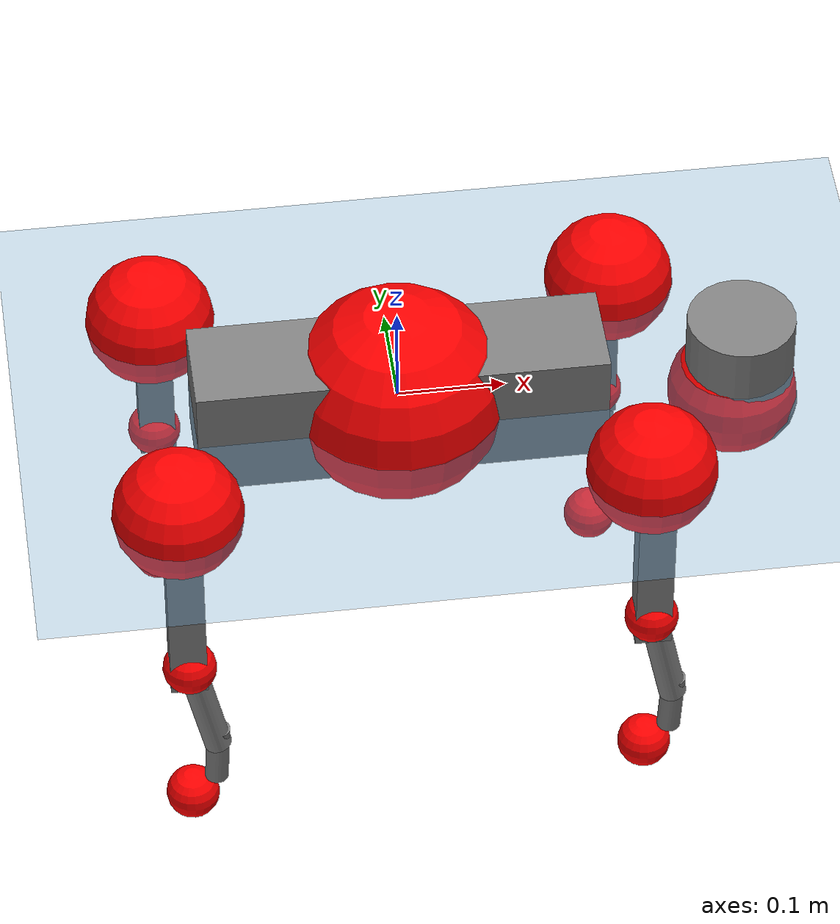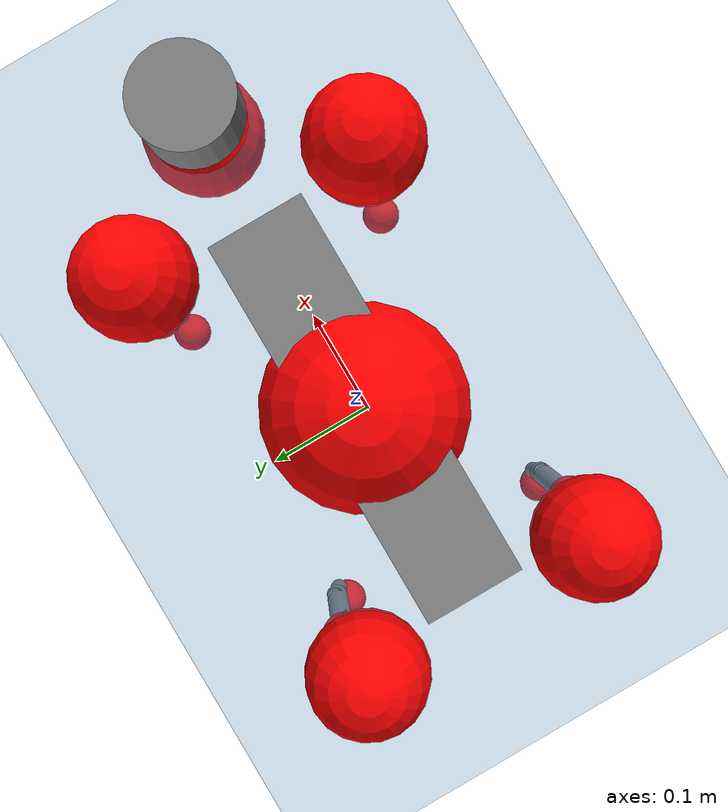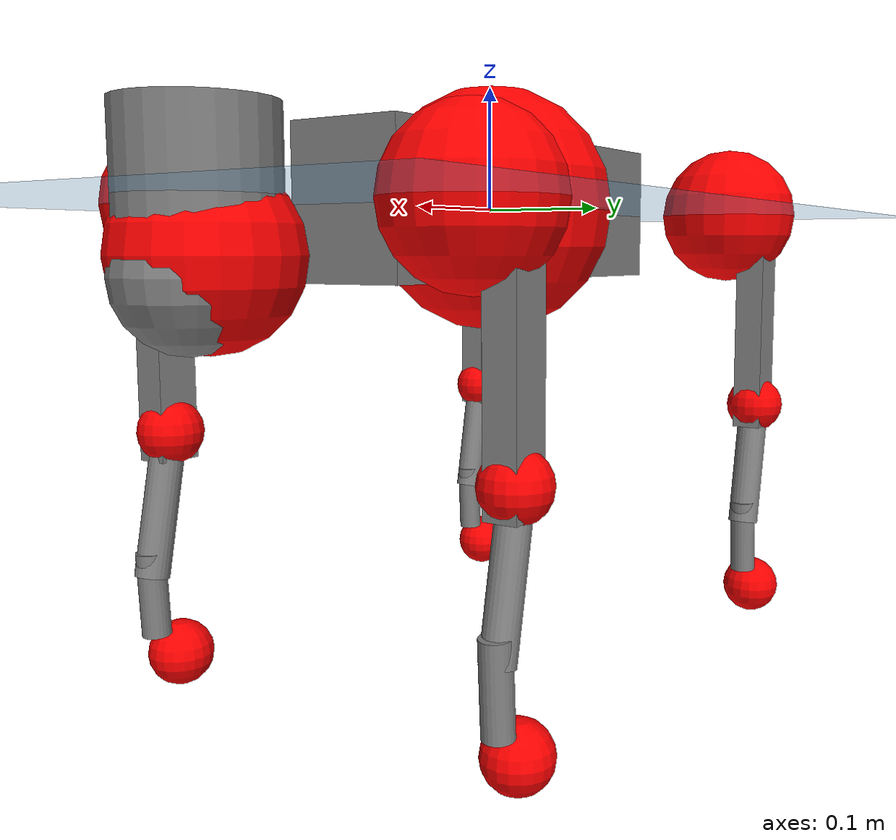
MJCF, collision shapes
<mujoco model="go2">
  <compiler angle="radian" assetdir="assets" balanceinertia="true" inertiafromgeom="false"/>

  <option timestep="0.005" density="1.2" viscosity="2e-05"/>

  <size nkey="1"/>

  <visual>
    <quality shadowsize="8192"/>
    <map shadowclip="0.5"/>
  </visual>

  <default>
    <default class="/">
      <geom contype="0" conaffinity="0" group="1" solref="-1000 -80"/>
      <site size="0.01 0.005 0.005" group="5"/>
      <general forcelimited="true" biastype="affine" gainprm="20" biasprm="0 -20 -0.5"/>
      <default class="go2">
        <joint armature="0.01" damping="0.01" frictionloss="0.2"/>
        <geom condim="1" margin="0.001"/>
        <default class="visual">
          <geom type="mesh" group="2"/>
        </default>
        <default class="collision">
          <geom group="3"/>
          <default class="foot">
            <geom size="0.022 0 0" condim="6" priority="1" friction="0.8 0.02 0.01" solimp="0.015 1 0.022"/>
          </default>
        </default>
        <default class="reward_collision_sphere">
          <geom group="5" rgba="1 0 0 1"/>
        </default>
      </default>
    </default>
  </default>

  <asset>
    <texture type="skybox" colorspace="auto" name="//unnamed_texture_0" builtin="gradient" rgb1="0.95 0.95 0.95" rgb2="0.95 0.95 0.95" width="100" height="600"/>
    <texture type="2d" colorspace="auto" name="texplane" builtin="checker" rgb1="0.345 0.575 0.748" rgb2="0.345 0.575 0.748" markrgb="1 1 1" width="512" height="512"/>
    <material name="MatPlane" class="/" texture="texplane" texuniform="true" texrepeat="2 2" specular="0.9"/>
    <material name="metal" class="/" rgba="0.9 0.95 0.95 1"/>
    <material name="black" class="/" rgba="0 0 0 1"/>
    <material name="white" class="/"/>
    <material name="gray" class="/" rgba="0.671705 0.692426 0.77427 1"/>
    <mesh name="base_0" class="/" file="base_0.obj"/>
    <mesh name="base_1" class="/" file="base_1.obj"/>
    <mesh name="base_2" class="/" file="base_2.obj"/>
    <mesh name="base_3" class="/" file="base_3.obj"/>
    <mesh name="base_4" class="/" file="base_4.obj"/>
    <mesh name="hip_0" class="/" file="hip_0.obj"/>
    <mesh name="hip_1" class="/" file="hip_1.obj"/>
    <mesh name="thigh_0" class="/" file="thigh_0.obj"/>
    <mesh name="thigh_1" class="/" file="thigh_1.obj"/>
    <mesh name="thigh_mirror_0" class="/" file="thigh_mirror_0.obj"/>
    <mesh name="thigh_mirror_1" class="/" file="thigh_mirror_1.obj"/>
    <mesh name="calf_0" class="/" file="calf_0.obj"/>
    <mesh name="calf_1" class="/" file="calf_1.obj"/>
    <mesh name="calf_mirror_0" class="/" file="calf_mirror_0.obj"/>
    <mesh name="calf_mirror_1" class="/" file="calf_mirror_1.obj"/>
    <mesh name="foot" class="/" file="foot.obj"/>
  </asset>

  <worldbody>
    <geom name="floor" class="/" size="100 100 0.125" type="plane" group="0" material="MatPlane"/>
    <light name="toplight_shadow" class="/" pos="0 0 5" dir="0.0990148 0.0990148 -0.990148" type="directional" ambient="0.04 0.04 0.04" diffuse="0.55 0.55 0.55" specular="0.12 0.12 0.12"/>
    <light name="toplight_fill" class="/" pos="0 0 5" dir="0.0990148 0.0990148 -0.990148" type="directional" castshadow="false" ambient="0.04 0.04 0.04" diffuse="0.3 0.3 0.3" specular="0.08 0.08 0.08"/>
    <body name="trunk" childclass="go2" pos="0.00086236 0.00257062 0.000844723" quat="1 0.000453676 0.000560253 7.58869e-05">
      <inertial pos="0.0231717 0.000185674 -0.00450464" quat="0.00472831 0.721623 0.00349369 0.692261" mass="7.25294" diaginertia="0.191681 0.15377 0.00929607"/>
      <joint name="//unnamed_joint_0" type="free" armature="0" damping="0" frictionloss="0"/>
      <geom name="//unnamed_geom_1" class="visual" material="black" mesh="base_0"/>
      <geom name="//unnamed_geom_2" class="visual" material="black" mesh="base_1"/>
      <geom name="//unnamed_geom_3" class="visual" material="black" mesh="base_2"/>
      <geom name="//unnamed_geom_4" class="visual" material="white" mesh="base_3"/>
      <geom name="//unnamed_geom_5" class="visual" material="gray" mesh="base_4"/>
      <geom name="trunk_1" class="collision" size="0.189742 0.0471581 0.0574976" type="box"/>
      <geom name="trunk_2" class="collision" size="0.0504365 0.0453928" pos="0.318367 0 0.00825203" type="cylinder"/>
      <geom name="trunk_3" class="collision" size="0.0474103" pos="0.327304 0 -0.0495122"/>
      <geom name="//unnamed_geom_9" class="reward_collision_sphere" size="0.100873"/>
      <geom name="//unnamed_geom_10" class="reward_collision_sphere" size="0.0605238" pos="0.312782 0 -0.0371341"/>
      <site name="imu" pos="-0.0196482 -0.000171707 0.035686" size="0.0100873"/>
      <camera name="track" pos="0 -2.16782 0" quat="0.707107 0.707107 0 0" mode="trackcom"/>
      <camera name="ego_camera" pos="0.348528 0 0.0371341" quat="-0.5 -0.5 0.5 0.5"/>
      <body name="FL_hip" pos="0.214828 0.0498809 -0.0018133" quat="1 -0.000432595 0.000246654 0.000200519">
        <inertial pos="-0.00640056 -0.000184709 0.000450899" quat="0.497213 0.498898 0.506408 0.497425" mass="0.694244" diaginertia="0.00153616 0.000877458 0.000186332"/>
        <joint name="FL_hip_joint" pos="0 0 0" axis="0.999974 -0.00143819 0.00704757" stiffness="0.00521971" range="-1.03293 1.049" armature="0.010207" damping="0.0137915" frictionloss="0.229969"/>
        <geom name="//unnamed_geom_11" class="visual" material="metal" mesh="hip_0"/>
        <geom name="//unnamed_geom_12" class="visual" material="gray" mesh="hip_1"/>
        <geom name="//unnamed_geom_13" class="collision" size="0.0464016 0.0201746" pos="0 0.0867127 0" quat="0.707107 0.707107 0 0" type="cylinder"/>
        <geom name="//unnamed_geom_14" class="reward_collision_sphere" size="0.0605238" pos="0 0.0758736 0"/>
        <body name="FL_thigh" pos="-0.00289757 0.103282 -0.00167055" quat="0.999999 0.00140779 -0.000361428 -8.79807e-05">
          <inertial pos="-0.00374737 -0.0238533 -0.0264287" quat="0.836535 0.0812213 -0.0249473 0.541285" mass="1.13398" diaginertia="0.00993961 0.00846654 0.000330076"/>
          <joint name="FL_thigh_joint" pos="0 0 0" axis="-0.00133098 0.999871 -0.0159944" range="-1.51684 3.4904" armature="0.0109134" damping="0" frictionloss="0.174249"/>
          <geom name="//unnamed_geom_15" class="visual" material="metal" mesh="thigh_0"/>
          <geom name="//unnamed_geom_16" class="visual" material="gray" mesh="thigh_1"/>
          <geom name="//unnamed_geom_17" class="collision" size="0.10743 0.0123569 0.0171484" pos="0 0 -0.0878841" quat="0.707107 0 0.707107 0" type="box"/>
          <body name="FL_calf" pos="-0.00108986 0.000506793 -0.175102" quat="0.999999 0.000748983 -0.000612254 0.000653462">
            <inertial pos="0.00976373 -0.00161861 -0.114921" quat="0.709907 0.00245968 -0.00459778 0.704276" mass="0.264536" diaginertia="0.00261172 0.00227144 2.0651e-05"/>
            <joint name="FL_calf_joint" pos="0 0 0" axis="-0.00484912 0.999983 0.00308706" stiffness="0.00636416" range="-2.71865 -0.842922" armature="0.0101689" damping="0" frictionloss="0.196159"/>
            <geom name="//unnamed_geom_18" class="visual" material="gray" mesh="calf_0"/>
            <geom name="//unnamed_geom_19" class="visual" material="black" mesh="calf_1"/>
            <geom name="FL_calf0" class="collision" size="0.0121048 0.0605238" pos="0.00893662 0 -0.0495122" quat="0.994493 0 -0.104807 0" type="cylinder"/>
            <geom name="//unnamed_geom_21" class="collision" size="0.011096 0.0327837" pos="0.0223416 0 -0.12213" quat="0.999688 0 0.0249974 0" type="cylinder"/>
            <geom name="//unnamed_geom_22" class="visual" pos="0 0 -0.175768" quat="1 0 0 0" material="black" mesh="foot"/>
            <geom name="FL_foot" class="foot" size="0.0224434" pos="-0.00223416 0 -0.175768"/>
            <geom name="//unnamed_geom_24" class="reward_collision_sphere" size="0.0252182"/>
            <geom name="//unnamed_geom_25" class="reward_collision_sphere" size="0.0252182" pos="-0.00223416 0 -0.175768"/>
            <site name="FL_foot" class="foot" pos="-0.00223416 0 -0.175768" size="0.0100873"/>
          </body>
        </body>
      </body>
      <body name="FR_hip" pos="0.216669 -0.0510068 -0.000395932" quat="1 -0.000121822 0.000101225 -8.63449e-05">
        <inertial pos="-0.00643096 -8.92767e-05 0.000337817" quat="0.495641 0.500664 0.495213 0.508369" mass="0.69747" diaginertia="0.00155679 0.000864296 0.000184345"/>
        <joint name="FR_hip_joint" pos="0 0 0" axis="0.999989 -0.00280491 0.00373165" range="-1.05588 1.0404" armature="0.0101655" damping="0.0109577" frictionloss="0.187314"/>
        <geom name="//unnamed_geom_26" class="visual" pos="0 2.25374e-09 9.66676e-08" quat="4.63268e-05 1 0 0" material="metal" mesh="hip_0"/>
        <geom name="//unnamed_geom_27" class="visual" pos="0 3.65358e-09 -2.39096e-07" quat="4.63268e-05 1 0 0" material="gray" mesh="hip_1"/>
        <geom name="//unnamed_geom_28" class="collision" size="0.0464016 0.0201746" pos="0 -0.0867127 0" quat="0.707107 0.707107 0 0" type="cylinder"/>
        <geom name="//unnamed_geom_29" class="reward_collision_sphere" size="0.0605238" pos="0 -0.0758736 0"/>
        <body name="FR_thigh" pos="0.000359527 -0.103742 0.0032673" quat="1 6.89075e-05 -7.68559e-05 9.73056e-06">
          <inertial pos="-0.00685728 0.0230279 -0.0250476" quat="0.551766 -0.0201312 0.0832841 0.829586" mass="1.21711" diaginertia="0.0104496 0.0090291 0.000346006"/>
          <joint name="FR_thigh_joint" pos="0 0 0" axis="-0.0111359 -0.999936 -0.0021906" stiffness="0.0107651" range="-3.48988 1.62674" armature="0.00907372" damping="0.00789701" frictionloss="0.210591"/>
          <geom name="//unnamed_geom_30" class="visual" material="metal" mesh="thigh_mirror_0"/>
          <geom name="//unnamed_geom_31" class="visual" material="gray" mesh="thigh_mirror_1"/>
          <geom name="//unnamed_geom_32" class="collision" size="0.10743 0.0123569 0.0171484" pos="0 0 -0.0878841" quat="0.707107 0 0.707107 0" type="box"/>
          <body name="FR_calf" pos="1.62932e-05 0.00227754 -0.173904" quat="1 -0.000228708 2.27435e-05 4.96633e-05">
            <inertial pos="0.00567364 -0.00181129 -0.115305" quat="0.704385 -0.00169612 0.00272182 0.709811" mass="0.242599" diaginertia="0.00267382 0.00221572 2.01587e-05"/>
            <joint name="FR_calf_joint" pos="0 0 0" axis="-0.0108158 -0.999905 -0.00850391" stiffness="0.000280257" range="0.835738 2.73682" armature="0.010106" damping="0.0105537" frictionloss="0.212116"/>
            <geom name="//unnamed_geom_33" class="visual" material="gray" mesh="calf_mirror_0"/>
            <geom name="//unnamed_geom_34" class="visual" material="black" mesh="calf_mirror_1"/>
            <geom name="FR_calf0" class="collision" size="0.0131135 0.0605238" pos="0.0111708 0 -0.0495122" quat="0.995004 0 -0.0998334 0" type="cylinder"/>
            <geom name="//unnamed_geom_36" class="collision" size="0.011096 0.0327837" pos="0.0223416 0 -0.12213" quat="0.999688 0 0.0249974 0" type="cylinder"/>
            <geom name="//unnamed_geom_37" class="visual" pos="0 0 -0.175768" quat="1 0 0 0" material="black" mesh="foot"/>
            <geom name="FR_foot" class="foot" size="0.019608" pos="-0.00223416 0 -0.175768"/>
            <geom name="//unnamed_geom_39" class="reward_collision_sphere" size="0.0252182"/>
            <geom name="//unnamed_geom_40" class="reward_collision_sphere" size="0.0252182" pos="-0.00223416 0 -0.175768"/>
            <site name="FR_foot" class="foot" pos="-0.00223416 0 -0.175768" size="0.0100873"/>
          </body>
        </body>
      </body>
      <body name="RL_hip" pos="-0.217779 0.0486473 -0.00215214" quat="1 -5.14899e-05 5.25341e-05 -2.25863e-05">
        <inertial pos="0.00618163 0.00308814 0.0001289" quat="0.501922 0.502286 0.49568 0.500084" mass="0.669279" diaginertia="0.00149949 0.000891975 0.000180143"/>
        <joint name="RL_hip_joint" pos="0 0 0" axis="-0.999906 -0.011827 -0.00699652" range="-1.0004 1.09589" armature="0.0100646" damping="0.0140718" frictionloss="0.178121"/>
        <geom name="//unnamed_geom_41" class="visual" pos="-2.54269e-09 0 -4.98427e-07" quat="4.63268e-05 0 1 0" material="metal" mesh="hip_0"/>
        <geom name="//unnamed_geom_42" class="visual" pos="-4.12201e-09 0 -4.42033e-07" quat="4.63268e-05 0 1 0" material="gray" mesh="hip_1"/>
        <geom name="//unnamed_geom_43" class="collision" size="0.0464016 0.0201746" pos="0 0.0867127 0" quat="0.707107 0.707107 0 0" type="cylinder"/>
        <geom name="//unnamed_geom_44" class="reward_collision_sphere" size="0.0605238" pos="0 0.0758736 0"/>
        <body name="RL_thigh" pos="0.00270126 0.105613 -0.000975698" quat="0.999999 0.00120728 -0.000452929 -5.37412e-05">
          <inertial pos="-0.00303589 -0.0243087 -0.0280126" quat="0.829868 0.0933015 -0.0162266 0.549864" mass="1.23173" diaginertia="0.0103127 0.00887556 0.000348975"/>
          <joint name="RL_thigh_joint" pos="0 0 0" axis="0.000874067 0.999995 -0.00298785" range="-0.475686 4.59398" armature="0.0102052" damping="0.0105067" frictionloss="0.215579"/>
          <geom name="//unnamed_geom_45" class="visual" material="metal" mesh="thigh_0"/>
          <geom name="//unnamed_geom_46" class="visual" material="gray" mesh="thigh_1"/>
          <geom name="//unnamed_geom_47" class="collision" size="0.10743 0.0123569 0.0171484" pos="0 0 -0.0878841" quat="0.707107 0 0.707107 0" type="box"/>
          <body name="RL_calf" pos="-0.00232503 0.00104846 -0.175617" quat="1 -0.000384161 0.000119532 0.000176402">
            <inertial pos="0.0063545 -0.000904875 -0.118096" quat="0.704365 0.00139134 -0.0152204 0.709673" mass="0.24616" diaginertia="0.00262231 0.00211674 2.01386e-05"/>
            <joint name="RL_calf_joint" pos="0 0 0" axis="0.0137782 0.999736 0.0183647" range="-2.69763 -0.885255" armature="0.0108018" damping="0" frictionloss="0.183228"/>
            <geom name="//unnamed_geom_48" class="visual" material="gray" mesh="calf_0"/>
            <geom name="//unnamed_geom_49" class="visual" material="black" mesh="calf_1"/>
            <geom name="RL_calf0" class="collision" size="0.0131135 0.0605238" pos="0.0111708 0 -0.0495122" quat="0.995004 0 -0.0998334 0" type="cylinder"/>
            <geom name="//unnamed_geom_51" class="collision" size="0.011096 0.0327837" pos="0.0223416 0 -0.12213" quat="0.999688 0 0.0249974 0" type="cylinder"/>
            <geom name="//unnamed_geom_52" class="visual" pos="0 0 -0.175768" quat="1 0 0 0" material="black" mesh="foot"/>
            <geom name="RL_foot" class="foot" size="0.0200751" pos="-0.00223416 0 -0.175768"/>
            <geom name="//unnamed_geom_54" class="reward_collision_sphere" size="0.0252182"/>
            <geom name="//unnamed_geom_55" class="reward_collision_sphere" size="0.0252182" pos="-0.00223416 0 -0.175768"/>
            <site name="RL_foot" class="foot" pos="-0.00223416 0 -0.175768" size="0.0100873"/>
          </body>
        </body>
      </body>
      <body name="RR_hip" pos="-0.21543 -0.0488726 -0.00287239" quat="0.999999 -0.000937801 -1.22038e-05 0.000720318">
        <inertial pos="0.00829776 0.000721344 -0.000203825" quat="0.499139 0.497089 0.498229 0.5055" mass="0.687454" diaginertia="0.00157672 0.000911865 0.000188047"/>
        <joint name="RR_hip_joint" pos="0 0 0" axis="-0.999998 0.000474098 0.00187137" range="-1.04627 1.09171" armature="0.00890784" damping="0.0197214" frictionloss="0.195372"/>
        <geom name="//unnamed_geom_56" class="visual" pos="2.54155e-09 2.25374e-09 -5.95094e-07" quat="2.14617e-09 4.63268e-05 4.63268e-05 -1" material="metal" mesh="hip_0"/>
        <geom name="//unnamed_geom_57" class="visual" pos="4.12485e-09 3.65358e-09 -2.02937e-07" quat="2.14617e-09 4.63268e-05 4.63268e-05 -1" material="gray" mesh="hip_1"/>
        <geom name="//unnamed_geom_58" class="collision" size="0.0464016 0.0201746" pos="0 -0.0867127 0" quat="0.707107 0.707107 0 0" type="cylinder"/>
        <geom name="//unnamed_geom_59" class="reward_collision_sphere" size="0.0605238" pos="0 -0.0758736 0"/>
        <body name="RR_thigh" pos="0.000123491 -0.105883 -0.000182081" quat="0.999999 0.00121345 0.00045673 -0.000511841">
          <inertial pos="-0.00262794 0.0251373 -0.0250402" quat="0.552425 -0.0242071 0.0835844 0.829008" mass="1.15544" diaginertia="0.0104309 0.00886243 0.000330643"/>
          <joint name="RR_thigh_joint" pos="0 0 0" axis="-0.00819197 -0.999809 -0.0177564" range="-4.53494 0.572137" armature="0.0107222" damping="0.00635542" frictionloss="0.173564"/>
          <geom name="//unnamed_geom_60" class="visual" material="metal" mesh="thigh_mirror_0"/>
          <geom name="//unnamed_geom_61" class="visual" material="gray" mesh="thigh_mirror_1"/>
          <geom name="//unnamed_geom_62" class="collision" size="0.10743 0.0123569 0.0171484" pos="0 0 -0.0878841" quat="0.707107 0 0.707107 0" type="box"/>
          <body name="RR_calf" pos="0.00179552 0.000975978 -0.176808" quat="1 -7.61481e-05 0.000517079 0.000150601">
            <inertial pos="0.00601603 0.00114918 -0.116693" quat="0.703506 -0.00426706 0.00623075 0.710649" mass="0.253677" diaginertia="0.00252965 0.00223724 2.05946e-05"/>
            <joint name="RR_calf_joint" pos="0 0 0" axis="-0.00169442 -0.999988 0.00457799" range="0.788271 2.7263" armature="0.0100925" damping="0.0203414" frictionloss="0.201559"/>
            <geom name="//unnamed_geom_63" class="visual" material="gray" mesh="calf_mirror_0"/>
            <geom name="//unnamed_geom_64" class="visual" material="black" mesh="calf_mirror_1"/>
            <geom name="RR_calf0" class="collision" size="0.0131135 0.0605238" pos="0.0111708 0 -0.0495122" quat="0.995004 0 -0.0998334 0" type="cylinder"/>
            <geom name="//unnamed_geom_66" class="collision" size="0.011096 0.0327837" pos="0.0223416 0 -0.12213" quat="0.999688 0 0.0249974 0" type="cylinder"/>
            <geom name="//unnamed_geom_67" class="visual" pos="0 0 -0.175768" quat="1 0 0 0" material="black" mesh="foot"/>
            <geom name="RR_foot" class="foot" size="0.0215422" pos="-0.00223416 0 -0.175768"/>
            <geom name="//unnamed_geom_69" class="reward_collision_sphere" size="0.0252182"/>
            <geom name="//unnamed_geom_70" class="reward_collision_sphere" size="0.0252182" pos="-0.00223416 0 -0.175768"/>
            <site name="RR_foot" class="foot" pos="-0.00223416 0 -0.175768" size="0.0100873"/>
          </body>
        </body>
      </body>
    </body>
  </worldbody>

  <contact>
    <pair class="/" geom1="floor" geom2="FL_foot" name="//unnamed_contact_0"/>
    <pair class="/" geom1="floor" geom2="FR_foot" name="//unnamed_contact_1"/>
    <pair class="/" geom1="floor" geom2="RL_foot" name="//unnamed_contact_2"/>
    <pair class="/" geom1="floor" geom2="RR_foot" name="//unnamed_contact_3"/>
  </contact>

  <actuator>
    <general name="FL_hip" class="/" joint="FL_hip_joint" forcerange="-23.9554 23.9554" gainprm="20.5126" biasprm="0 -20.5126 -0.529171"/>
    <general name="FL_thigh" class="/" joint="FL_thigh_joint" forcerange="-22.689 22.689" gainprm="20.5126" biasprm="0 -20.5126 -0.529171"/>
    <general name="FL_calf" class="/" joint="FL_calf_joint" forcerange="-50.5552 50.5552" gainprm="20.5126" biasprm="0 -20.5126 -0.529171"/>
    <general name="FR_hip" class="/" joint="FR_hip_joint" forcerange="-23.6509 23.6509" gainprm="20.5126" biasprm="0 -20.5126 -0.529171"/>
    <general name="FR_thigh" class="/" joint="FR_thigh_joint" forcerange="-23.5764 23.5764" gainprm="20.5126" biasprm="0 -20.5126 -0.529171"/>
    <general name="FR_calf" class="/" joint="FR_calf_joint" forcerange="-49.7031 49.7031" gainprm="20.5126" biasprm="0 -20.5126 -0.529171"/>
    <general name="RL_hip" class="/" joint="RL_hip_joint" forcerange="-23.6276 23.6276" gainprm="20.5126" biasprm="0 -20.5126 -0.529171"/>
    <general name="RL_thigh" class="/" joint="RL_thigh_joint" forcerange="-26.2288 26.2288" gainprm="20.5126" biasprm="0 -20.5126 -0.529171"/>
    <general name="RL_calf" class="/" joint="RL_calf_joint" forcerange="-41.0259 41.0259" gainprm="20.5126" biasprm="0 -20.5126 -0.529171"/>
    <general name="RR_hip" class="/" joint="RR_hip_joint" forcerange="-24.7655 24.7655" gainprm="20.5126" biasprm="0 -20.5126 -0.529171"/>
    <general name="RR_thigh" class="/" joint="RR_thigh_joint" forcerange="-25.7354 25.7354" gainprm="20.5126" biasprm="0 -20.5126 -0.529171"/>
    <general name="RR_calf" class="/" joint="RR_calf_joint" forcerange="-47.362 47.362" gainprm="20.5126" biasprm="0 -20.5126 -0.529171"/>
  </actuator>

  <sensor>
    <gyro site="imu" name="imu_angular_velocity"/>
    <velocimeter site="imu" name="imu_linear_velocity"/>
    <framelinvel objtype="site" objname="FL_foot" name="FL_foot_global_linear_velocity"/>
    <framelinvel objtype="site" objname="FR_foot" name="FR_foot_global_linear_velocity"/>
    <framelinvel objtype="site" objname="RL_foot" name="RL_foot_global_linear_velocity"/>
    <framelinvel objtype="site" objname="RR_foot" name="RR_foot_global_linear_velocity"/>
  </sensor>

  <keyframe>
    <key name="home" qpos="0 0 0.325 1 0 0 0 0.1 0.8 -1.5 -0.1 -0.8 1.5 -0.1 0.8 -1.5 0.1 -0.8 1.5"/>
  </keyframe>
</mujoco>
